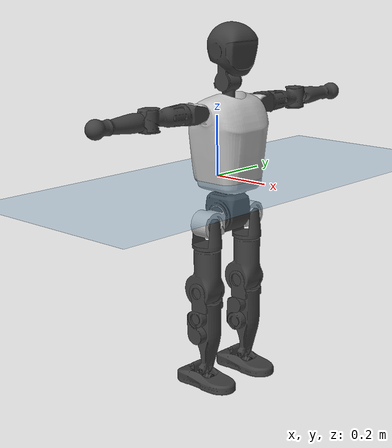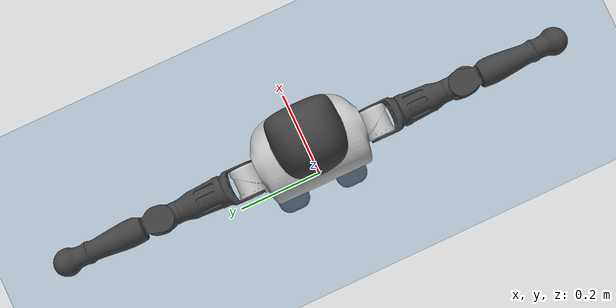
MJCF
<mujoco model="T1">
  <compiler angle="radian" assetdir="assets" balanceinertia="true" inertiafromgeom="false"/>

  <option timestep="0.005" density="1.2" viscosity="2e-05"/>

  <size nkey="1"/>

  <visual>
    <quality shadowsize="8192"/>
    <map shadowclip="0.5"/>
  </visual>

  <default>
    <default class="/">
      <joint armature="0.01" damping="0.01" frictionloss="0.1"/>
      <geom contype="0" conaffinity="0" group="1" solref="-1000 -80"/>
      <site size="0.01 0.005 0.005" group="5"/>
      <general forcelimited="true" biastype="affine" gainprm="25" biasprm="0 -25 -0.6"/>
      <default class="t1">
        <geom rgba="0.25 0.25 0.25 1"/>
        <default class="visual">
          <geom type="mesh" group="2"/>
        </default>
        <default class="collision">
          <geom group="3"/>
        </default>
        <default class="foot">
          <geom size="0.1115 0.05 0.015" type="box" condim="6" group="4" priority="1" solimp="0.015 1 0.015"/>
        </default>
        <default class="reward_collision_sphere">
          <geom group="5" rgba="1 0 0 1"/>
        </default>
      </default>
    </default>
  </default>

  <asset>
    <texture type="skybox" colorspace="auto" name="//unnamed_texture_0" builtin="gradient" rgb1="0.95 0.95 0.95" rgb2="0.95 0.95 0.95" width="100" height="600"/>
    <texture type="2d" colorspace="auto" name="texplane" builtin="checker" rgb1="0.345 0.575 0.748" rgb2="0.345 0.575 0.748" markrgb="1 1 1" width="512" height="512"/>
    <material name="MatPlane" class="/" texture="texplane" texuniform="true" texrepeat="2 2" specular="0.9"/>
    <mesh name="Trunk" class="/" file="Trunk.stl"/>
    <mesh name="H1" class="/" file="H1.stl"/>
    <mesh name="H2" class="/" file="H2.stl"/>
    <mesh name="AL1" class="/" file="AL1.stl"/>
    <mesh name="AL2" class="/" file="AL2.stl"/>
    <mesh name="AL3" class="/" file="AL3.stl"/>
    <mesh name="left_hand_link" class="/" file="left_hand_link.stl"/>
    <mesh name="AR1" class="/" file="AR1.stl"/>
    <mesh name="AR2" class="/" file="AR2.stl"/>
    <mesh name="AR3" class="/" file="AR3.stl"/>
    <mesh name="right_hand_link" class="/" file="right_hand_link.stl"/>
    <mesh name="Waist" class="/" file="Waist.stl"/>
    <mesh name="Hip_Pitch_Left" class="/" file="Hip_Pitch_Left.stl"/>
    <mesh name="Hip_Roll_Left" class="/" file="Hip_Roll_Left.stl"/>
    <mesh name="Hip_Yaw_Left" class="/" file="Hip_Yaw_Left.stl"/>
    <mesh name="Shank_Left" class="/" file="Shank_Left.stl"/>
    <mesh name="Ankle_Cross_Left" class="/" file="Ankle_Cross_Left.stl"/>
    <mesh name="left_foot_link" class="/" file="left_foot_link.stl"/>
    <mesh name="Hip_Pitch_Right" class="/" file="Hip_Pitch_Right.stl"/>
    <mesh name="Hip_Roll_Right" class="/" file="Hip_Roll_Right.stl"/>
    <mesh name="Hip_Yaw_Right" class="/" file="Hip_Yaw_Right.stl"/>
    <mesh name="Shank_Right" class="/" file="Shank_Right.stl"/>
    <mesh name="Ankle_Cross_Right" class="/" file="Ankle_Cross_Right.stl"/>
    <mesh name="right_foot_link" class="/" file="right_foot_link.stl"/>
  </asset>

  <worldbody>
    <geom name="floor" class="/" size="100 100 0.125" type="plane" group="0" material="MatPlane"/>
    <light name="toplight_shadow" class="/" pos="0 0 5" dir="0.0990148 0.0990148 -0.990148" type="directional" ambient="0.04 0.04 0.04" diffuse="0.55 0.55 0.55" specular="0.12 0.12 0.12"/>
    <light name="toplight_fill" class="/" pos="0 0 5" dir="0.0990148 0.0990148 -0.990148" type="directional" castshadow="false" ambient="0.04 0.04 0.04" diffuse="0.3 0.3 0.3" specular="0.08 0.08 0.08"/>
    <body name="trunk" childclass="t1" pos="0.000957048 -0.00160456 0.000850593" quat="1 0.000298321 0.000474138 -0.000682906">
      <inertial pos="0.041359 -0.00142975 0.107663" quat="0.999959 -6.19371e-06 -0.00901637 0.000330235" mass="8.70317" diaginertia="0.0222584 0.055452 0.068977"/>
      <joint name="//unnamed_joint_0" type="free" armature="0" damping="0" frictionloss="0"/>
      <geom name="//unnamed_geom_1" class="visual" rgba="0.76 0.76 0.76 1" mesh="Trunk"/>
      <geom name="//unnamed_geom_2" class="collision" size="0.0679359 0.0905813 0.135872" pos="0.0450631 0 0.123937" type="box"/>
      <geom name="//unnamed_geom_3" class="reward_collision_sphere" size="0.104168" pos="0.0450631 0 0.103281"/>
      <geom name="//unnamed_geom_4" class="reward_collision_sphere" size="0.0135872" pos="0.0450631 0.0793543 0"/>
      <geom name="//unnamed_geom_5" class="reward_collision_sphere" size="0.0135872" pos="0.0450631 -0.0793543 0"/>
      <geom name="//unnamed_geom_6" class="reward_collision_sphere" size="0.0135872" pos="0.0450631 0.0998931 0.185905"/>
      <geom name="//unnamed_geom_7" class="reward_collision_sphere" size="0.0135872" pos="0.0450631 -0.0998931 0.185905"/>
      <site name="imu" pos="0.00426053 0.00465026 -0.00430455" size="0.00905813"/>
      <camera name="track" pos="0 -1.86716 0" quat="0.707107 0.707107 0 0" mode="trackcom"/>
      <camera name="ego_camera" pos="0.0916282 0 0.433779" quat="-0.5 -0.5 0.5 0.5"/>
      <body name="H1" pos="0.0478381 0.00140557 0.250035" quat="1 -3.82747e-06 -5.54073e-08 -1.47816e-05">
        <inertial pos="-0.00250399 -0.0024067 0.0601817" quat="0.76037 -0.0123019 -0.00900398 0.649311" mass="0.332173" diaginertia="5.81363e-05 0.000159922 0.000177059"/>
        <joint name="AAHead_yaw" pos="0 0 0" axis="0.00181909 -0.0016561 0.999997" range="-1.55401 1.54744" armature="0.00849482" damping="0.0143772" frictionloss="0.101475"/>
        <geom name="//unnamed_geom_8" class="visual" mesh="H1"/>
        <body name="H2" pos="-0.00117146 -0.0001906 0.0640542" quat="1 -3.41977e-05 5.80316e-05 -7.12914e-06">
          <inertial pos="0.0048601 0.000536513 0.101705" quat="0.988869 0.106206 -0.0702911 -0.0769251" mass="0.457113" diaginertia="0.00048053 0.00132273 0.00203691"/>
          <joint name="Head_pitch" pos="0 0 0" axis="-0.000807903 -1 0.000303394" range="-1.23336 0.360827" armature="0.0080675" damping="0.0048398" frictionloss="0.0945397"/>
          <geom name="//unnamed_geom_9" class="visual" mesh="H2"/>
          <geom name="//unnamed_geom_10" class="collision" size="0.072465" pos="0.00751051 0 0.113609"/>
          <geom name="//unnamed_geom_11" class="reward_collision_sphere" size="0.0815231" pos="0.015021 0 0.103281"/>
        </body>
      </body>
      <body name="AL1" pos="0.0436039 0.0991603 0.227135" quat="1 -0.000100506 0.000317819 4.24499e-05">
        <inertial pos="-0.000427483 0.0416302 -0.000221626" quat="0.514008 0.490519 -0.501981 0.493156" mass="0.395253" diaginertia="0.000325582 0.000910958 0.000350368"/>
        <joint name="Left_Shoulder_Pitch" pos="0 0 0" axis="-0.000408786 1 -0.000228106" range="-3.30926 1.20287" armature="0.00901801" damping="0.00657808" frictionloss="0.0907121"/>
        <geom name="//unnamed_geom_12" class="visual" rgba="0.76 0.76 0.76 1" mesh="AL1"/>
        <body name="AL2" pos="0.000384115 0.044313 0.000703782" quat="1 -1.34005e-05 0.000252327 3.29347e-05">
          <inertial pos="0.00327945 0.0354091 -0.000478493" quat="0.487201 0.512974 -0.487374 0.51182" mass="0.120555" diaginertia="9.73246e-05 0.000246112 0.000209823"/>
          <joint name="Left_Shoulder_Roll" pos="0 0 0" axis="-0.999999 0.000991343 -0.000327498" stiffness="0.003703" range="-1.55579 1.74015" armature="0.00905066" damping="0.00339567" frictionloss="0.0887956"/>
          <geom name="//unnamed_geom_13" class="visual" mesh="AL2"/>
          <body name="AL3" pos="0.00220651 0.056942 0.000271914" quat="1 0.000323199 0.000444186 0.000222844">
            <inertial pos="-0.00251519 0.0801871 -0.0005108" quat="0.706251 0.707961 -0.000345998 -0.000353762" mass="0.765884" diaginertia="0.00305941 0.00886568 0.000735767"/>
            <joint name="Left_Elbow_Pitch" pos="0 0 0" axis="-0.00059677 -0.999998 -0.00210037" stiffness="0.000339302" range="-2.26597 2.2726" armature="0.00900178" damping="0.00766809" frictionloss="0.0918152"/>
            <geom name="//unnamed_geom_14" class="visual" mesh="AL3"/>
            <geom name="//unnamed_geom_15" class="collision" size="0.0271744 0.0679359" pos="0 0.046679 0" quat="0.707105 0.707108 0 0" type="cylinder"/>
            <geom name="//unnamed_geom_16" class="reward_collision_sphere" size="0.0326093"/>
            <body name="left_hand_link" pos="0.000890835 0.137924 -0.00135422" quat="1 0.000341438 -0.000419 -0.000727773">
              <inertial pos="3.75171e-05 0.102044 0.000866545" quat="0.708163 0.706047 0.00125301 0.00070404" mass="0.240065" diaginertia="0.0019337 0.00559534 0.000241169"/>
              <joint name="Left_Elbow_Yaw" pos="0 0 0" axis="0.00105294 -0.00387503 0.999992" stiffness="0.00185758" range="-2.44469 0.0216421" armature="0.00885305" damping="0.0134117" frictionloss="0.0920716"/>
              <geom name="//unnamed_geom_17" class="visual" mesh="left_hand_link"/>
              <geom name="//unnamed_geom_18" class="collision" size="0.0271744 0.0792586" pos="0 0.121365 0" quat="0.707105 0.707108 0 0" type="cylinder"/>
              <geom name="//unnamed_geom_19" class="reward_collision_sphere" size="0.0452906"/>
              <geom name="//unnamed_geom_20" class="reward_collision_sphere" size="0.0317034" pos="0 0.102694 0"/>
              <geom name="//unnamed_geom_21" class="reward_collision_sphere" size="0.0317034" pos="0 0.20072 0"/>
            </body>
          </body>
        </body>
      </body>
      <body name="AR1" pos="0.042403 -0.100326 0.226862" quat="1 -0.000290248 0.000279256 -0.000143483">
        <inertial pos="-0.000689281 -0.0438024 0.00209143" quat="0.504042 0.495975 -0.504086 0.495831" mass="0.395085" diaginertia="0.000328658 0.000895925 0.00034465"/>
        <joint name="Right_Shoulder_Pitch" pos="0 0 0" axis="0.00375866 -0.999961 0.00798278" range="-1.20378 3.29775" armature="0.00859009" damping="0.00728427" frictionloss="0.0954599"/>
        <geom name="//unnamed_geom_22" class="visual" rgba="0.76 0.76 0.76 1" mesh="AR1"/>
        <body name="AR2" pos="-0.000498243 -0.0425544 0.000618844" quat="1 0.00013059 0.000152338 -9.42719e-05">
          <inertial pos="0.00286181 -0.0356954 0.000644142" quat="0.509956 0.488284 -0.513191 0.488015" mass="0.122025" diaginertia="9.85252e-05 0.000251236 0.000207392"/>
          <joint name="Right_Shoulder_Roll" pos="0 0 0" axis="-0.99998 -0.00229957 -0.00592936" range="-1.74587 1.56667" armature="0.00818195" damping="0.00695421" frictionloss="0.0899193"/>
          <geom name="//unnamed_geom_23" class="visual" mesh="AR2"/>
          <body name="AR3" pos="-0.000688401 -0.0581618 0.0014249" quat="1 -3.07711e-05 -0.000595733 0.00012468">
            <inertial pos="0.00199744 -0.079171 0.00178529" quat="0.707249 0.706964 -0.000542886 -0.000733807" mass="0.753026" diaginertia="0.00297569 0.0089954 0.000733769"/>
            <joint name="Right_Elbow_Pitch" pos="0 0 0" axis="-0.000279422 1 0.000392125" range="-2.26244 2.27615" armature="0.009189" damping="0.00632431" frictionloss="0.101476"/>
            <geom name="//unnamed_geom_24" class="visual" mesh="AR3"/>
            <geom name="//unnamed_geom_25" class="collision" size="0.0271744 0.0679359" pos="0 -0.046679 0" quat="0.707105 0.707108 0 0" type="cylinder"/>
            <geom name="//unnamed_geom_26" class="reward_collision_sphere" size="0.0326093"/>
            <body name="right_hand_link" pos="-0.000792446 -0.137348 -0.00133679" quat="1 1.98848e-06 -1.11705e-05 -4.2803e-06">
              <inertial pos="-0.000396439 -0.10315 0.00100949" quat="0.706222 0.707991 0.000277192 0.000444596" mass="0.246325" diaginertia="0.0020044 0.00591802 0.000262097"/>
              <joint name="Right_Elbow_Yaw" pos="0 0 0" axis="0.00565267 -0.00672435 0.999961" range="0.0188473 2.43836" armature="0.00942004" damping="0.00907531" frictionloss="0.0894931"/>
              <geom name="//unnamed_geom_27" class="visual" mesh="right_hand_link"/>
              <geom name="//unnamed_geom_28" class="collision" size="0.0271744 0.0792586" pos="0 -0.121365 0" quat="0.707105 0.707108 0 0" type="cylinder"/>
              <geom name="//unnamed_geom_29" class="reward_collision_sphere" size="0.0452906"/>
              <geom name="//unnamed_geom_30" class="reward_collision_sphere" size="0.0317034" pos="0 -0.102694 0"/>
              <geom name="//unnamed_geom_31" class="reward_collision_sphere" size="0.0317034" pos="0 -0.20072 0"/>
            </body>
          </body>
        </body>
      </body>
      <body name="Waist" pos="0.0455793 -0.000152887 -0.120173" quat="0.999999 -0.00135478 -2.47197e-05 -0.000232179">
        <inertial pos="-0.000584537 0.000188102 0.0072763" quat="0.984039 0.00942882 -0.177677 -0.00294347" mass="1.89591" diaginertia="0.00129268 0.00385019 0.00569239"/>
        <joint name="Waist" pos="0 0 0" axis="-0.000390504 -0.000604053 1" range="-1.57061 1.55547" armature="0.00908868" damping="0.0111696" frictionloss="0.0893864"/>
        <geom name="//unnamed_geom_32" class="visual" mesh="Waist"/>
        <body name="Hip_Pitch_Left" pos="0.00158937 0.0974552 0.00133389" quat="1 8.24177e-05 -0.000177409 6.65054e-05">
          <inertial pos="0.00273778 -0.00656561 -0.0186116" quat="0.975971 0.217101 0.0178332 -0.00551183" mass="0.762888" diaginertia="0.000420924 0.00104751 0.0014883"/>
          <joint name="Left_Hip_Pitch" pos="0 0 0" axis="-0.000531331 1 -0.000343492" stiffness="0.00602913" range="-1.81682 1.58194" armature="0.00894671" damping="0.0103927" frictionloss="0.0923458"/>
          <geom name="//unnamed_geom_33" class="visual" rgba="0.76 0.76 0.76 1" mesh="Hip_Pitch_Left"/>
          <body name="Hip_Roll_Left" pos="-0.00110773 0.000266239 -0.0241378" quat="1 2.16129e-06 -3.19848e-06 -3.58373e-07">
            <inertial pos="0.00118812 -0.00226887 -0.0548226" quat="0.706696 -0.00589741 -0.00611965 0.707466" mass="0.28403" diaginertia="0.000403855 0.0010372 0.000617566"/>
            <joint name="Left_Hip_Roll" pos="0 0 0" axis="-0.999989 0.000811236 -0.00463889" range="-1.56056 0.19402" armature="0.00878766" damping="0" frictionloss="0.0951659"/>
            <geom name="//unnamed_geom_34" class="visual" mesh="Hip_Roll_Left"/>
            <geom name="//unnamed_geom_35" class="reward_collision_sphere" size="0.0498197"/>
            <body name="Hip_Yaw_Left" pos="-0.000509403 -0.000265369 -0.0848292" quat="1 -2.6322e-05 -4.83585e-06 -1.49636e-05">
              <inertial pos="-0.00514486 -0.00114825 -0.093071" quat="0.69676 -0.0293957 -0.0292659 0.716104" mass="1.61203" diaginertia="0.00611002 0.0174544 0.00297067"/>
              <joint name="Left_Hip_Yaw" pos="0 0 0" axis="-0.000625617 0.00064218 -1" range="-1.05131 1.00252" armature="0.00916004" damping="0.0060637" frictionloss="0.0900349"/>
              <geom name="//unnamed_geom_36" class="visual" mesh="Hip_Yaw_Left"/>
              <geom name="//unnamed_geom_37" class="collision" size="0.0452906 0.072465" type="cylinder"/>
              <body name="Shank_Left" pos="-0.0115703 0.000148376 -0.141577" quat="1 1.37525e-06 3.25429e-08 2.56044e-06">
                <inertial pos="-0.00544855 -1.81265e-05 -0.128164" quat="0.997546 0.000933539 -0.0243369 0.0656488" mass="1.28111" diaginertia="0.00827833 0.0236321 0.00213704"/>
                <joint name="Left_Knee_Pitch" pos="0 0 0" axis="0.00549319 0.999982 0.00240511" range="-0.00247901 2.336" armature="0.00934053" damping="0.00394581" frictionloss="0.0887333"/>
                <geom name="//unnamed_geom_38" class="visual" mesh="Shank_Left"/>
                <geom name="//unnamed_geom_39" class="collision" size="0.0452906 0.0679359" pos="0 0 -0.123937" type="cylinder"/>
                <geom name="//unnamed_geom_40" class="reward_collision_sphere" size="0.0588778"/>
                <body name="Ankle_Cross_Left" pos="0.00134545 -0.000354072 -0.288222" quat="1 9.97957e-06 -0.000145104 0.000183173">
                  <inertial pos="-0.00509867 -0.000413557 -0.00863223" quat="0.443703 0.551093 0.550981 0.442542" mass="0.0542934" diaginertia="6.92268e-06 1.81279e-05 1.3132e-05"/>
                  <joint name="Left_Ankle_Pitch" pos="0 0 0" axis="0.00104956 0.999999 0.000310492" range="-0.872775 0.35189" armature="0.0100937" damping="0.017204" frictionloss="0.0923474"/>
                  <geom name="//unnamed_geom_41" class="visual" mesh="Ankle_Cross_Left"/>
                  <body name="left_foot_link" pos="0.000159691 -0.00109087 -0.0114354" quat="0.999999 -0.000193246 2.14966e-05 0.00116257">
                    <inertial pos="-0.00112945 0.000410787 -0.00940685" quat="0.00602639 0.614911 -0.000302194 0.788573" mass="0.524029" diaginertia="0.000667276 0.00170187 0.00261059"/>
                    <joint name="Left_Ankle_Roll" pos="0 0 0" axis="-0.999907 0.00280741 0.0133681" range="-0.458108 0.446586" armature="0.00913933" damping="0.00130462" frictionloss="0.0937797"/>
                    <geom name="//unnamed_geom_42" class="visual" mesh="left_foot_link"/>
                    <geom name="left_foot" class="foot" size="0.108329 0.0427764 0.0139966" pos="0.00751051 0 -0.0154921"/>
                    <geom name="//unnamed_geom_44" class="reward_collision_sphere" size="0.0471023" pos="0.00751051 0 -0.0154921"/>
                    <geom name="//unnamed_geom_45" class="reward_collision_sphere" size="0.0271744" pos="0.0713499 -0.0214723 -0.0154921"/>
                    <geom name="//unnamed_geom_46" class="reward_collision_sphere" size="0.0271744" pos="-0.0525736 -0.0214723 -0.0154921"/>
                    <site name="left_foot" class="foot" pos="0.00751051 0 -0.0154921" size="0.00905813"/>
                  </body>
                </body>
              </body>
            </body>
          </body>
        </body>
        <body name="Hip_Pitch_Right" pos="0.00151837 -0.0986419 -0.000906256" quat="1 6.53482e-05 6.65044e-05 5.56111e-06">
          <inertial pos="-0.00180289 0.00529428 -0.0175717" quat="0.974179 -0.225409 0.0128189 -0.00130487" mass="0.756106" diaginertia="0.000437203 0.00105243 0.00145079"/>
          <joint name="Right_Hip_Pitch" pos="0 0 0" axis="0.000743439 -0.999997 0.00212172" range="-1.55703 1.79312" armature="0.00950542" damping="0" frictionloss="0.0863682"/>
          <geom name="//unnamed_geom_47" class="visual" rgba="0.76 0.76 0.76 1" mesh="Hip_Pitch_Right"/>
          <body name="Hip_Roll_Right" pos="-0.00144249 0.000630472 -0.0217654" quat="1 4.37636e-05 0.000202281 -3.30592e-05">
            <inertial pos="0.000637083 -0.00119544 -0.0547089" quat="0.708153 -0.00124807 -1.23313e-05 0.706058" mass="0.282522" diaginertia="0.00042719 0.00108763 0.000602303"/>
            <joint name="Right_Hip_Roll" pos="0 0 0" axis="-0.99999 0.00360363 -0.00272745" range="-0.200442 1.57458" armature="0.00886172" damping="0.00341022" frictionloss="0.092928"/>
            <geom name="//unnamed_geom_48" class="visual" mesh="Hip_Roll_Right"/>
            <geom name="//unnamed_geom_49" class="reward_collision_sphere" size="0.0498197"/>
            <body name="Hip_Yaw_Right" pos="-0.00146386 0.000263434 -0.0862749" quat="1 0.00041933 -3.46869e-06 -0.000170662">
              <inertial pos="-0.00538602 0.000146536 -0.0922198" quat="0.714417 -0.0315994 -0.0336472 0.698196" mass="1.59444" diaginertia="0.00629135 0.018041 0.00311832"/>
              <joint name="Right_Hip_Yaw" pos="0 0 0" axis="0.000985044 0.000467097 -0.999999" stiffness="0.00317073" range="-0.996903 1.013" armature="0.00906291" damping="0.0206541" frictionloss="0.0952147"/>
              <geom name="//unnamed_geom_50" class="visual" mesh="Hip_Yaw_Right"/>
              <geom name="//unnamed_geom_51" class="collision" size="0.0452906 0.072465" type="cylinder"/>
              <body name="Shank_Right" pos="-0.0116931 0.0003464 -0.140335" quat="1 -0.000321944 8.62368e-05 -0.000205145">
                <inertial pos="-0.00479648 -0.00159513 -0.12676" quat="0.999291 -0.00170697 -0.0195939 -0.0320911" mass="1.35281" diaginertia="0.00848304 0.0247202 0.00225079"/>
                <joint name="Right_Knee_Pitch" pos="0 0 0" axis="-0.00704389 -0.999974 0.00148407" range="-2.37846 -0.00427072" armature="0.0094134" damping="0.00634736" frictionloss="0.0899172"/>
                <geom name="//unnamed_geom_52" class="visual" mesh="Shank_Right"/>
                <geom name="//unnamed_geom_53" class="collision" size="0.0452906 0.0679359" pos="0 0 -0.123937" type="cylinder"/>
                <geom name="//unnamed_geom_54" class="reward_collision_sphere" size="0.0588778"/>
                <body name="Ankle_Cross_Right" pos="0.000557788 -0.00147519 -0.290251" quat="1 2.3876e-05 -1.09083e-05 6.48439e-06">
                  <inertial pos="-0.00320472 -3.49591e-05 -0.00835229" quat="0.443362 0.551098 0.550604 0.443346" mass="0.054404" diaginertia="7.11656e-06 1.82074e-05 1.36846e-05"/>
                  <joint name="Right_Ankle_Pitch" pos="0 0 0" axis="0.00741984 -0.999972 0.000417057" range="-0.347605 0.850234" armature="0.00907158" damping="0.00621686" frictionloss="0.0903815"/>
                  <geom name="//unnamed_geom_55" class="visual" mesh="Ankle_Cross_Right"/>
                  <body name="right_foot_link" pos="-3.35541e-05 0.000396872 -0.0103647" quat="1 0.000139702 -3.56265e-05 -2.72487e-05">
                    <inertial pos="1.9158e-06 0.00137459 -0.0117559" quat="0.000573305 0.61661 -0.00574421 0.787248" mass="0.498209" diaginertia="0.000628304 0.00163971 0.00242302"/>
                    <joint name="Right_Ankle_Roll" pos="0 0 0" axis="-0.999985 0.00550287 -0.000160526" range="-0.4639 0.481086" armature="0.00790921" damping="0" frictionloss="0.0935754"/>
                    <geom name="//unnamed_geom_56" class="visual" mesh="right_foot_link"/>
                    <geom name="right_foot" class="foot" size="0.0970479 0.0433493 0.0143009" pos="0.00751051 0 -0.0154921"/>
                    <geom name="//unnamed_geom_58" class="reward_collision_sphere" size="0.0362325"/>
                    <geom name="//unnamed_geom_59" class="reward_collision_sphere" size="0.0271744" pos="0.00751051 0 -0.0154921"/>
                    <geom name="//unnamed_geom_60" class="reward_collision_sphere" size="0.0271744" pos="0.0713499 0.0214723 -0.0154921"/>
                    <geom name="//unnamed_geom_61" class="reward_collision_sphere" size="0.0271744" pos="-0.0525736 0.0214723 -0.0154921"/>
                    <site name="right_foot" class="foot" pos="0.00751051 0 -0.0154921" size="0.00905813"/>
                  </body>
                </body>
              </body>
            </body>
          </body>
        </body>
      </body>
    </body>
  </worldbody>

  <contact>
    <pair class="/" geom1="floor" geom2="left_foot" name="//unnamed_contact_0"/>
    <pair class="/" geom1="floor" geom2="right_foot" name="//unnamed_contact_1"/>
  </contact>

  <actuator>
    <general name="AAHead_yaw" class="/" joint="AAHead_yaw" forcerange="-6.37323 6.37323" gainprm="23.0769" biasprm="0 -23.0769 -0.527611"/>
    <general name="Head_pitch" class="/" joint="Head_pitch" forcerange="-6.33746 6.33746" gainprm="23.0769" biasprm="0 -23.0769 -0.527611"/>
    <general name="Left_Shoulder_Pitch" class="/" joint="Left_Shoulder_Pitch" forcerange="-14.7687 14.7687" gainprm="23.0769" biasprm="0 -23.0769 -0.527611"/>
    <general name="Left_Shoulder_Roll" class="/" joint="Left_Shoulder_Roll" forcerange="-15.153 15.153" gainprm="23.0769" biasprm="0 -23.0769 -0.527611"/>
    <general name="Left_Elbow_Pitch" class="/" joint="Left_Elbow_Pitch" forcerange="-16.5986 16.5986" gainprm="23.0769" biasprm="0 -23.0769 -0.527611"/>
    <general name="Left_Elbow_Yaw" class="/" joint="Left_Elbow_Yaw" forcerange="-16.5906 16.5906" gainprm="23.0769" biasprm="0 -23.0769 -0.527611"/>
    <general name="Right_Shoulder_Pitch" class="/" joint="Right_Shoulder_Pitch" forcerange="-16.5921 16.5921" gainprm="23.0769" biasprm="0 -23.0769 -0.527611"/>
    <general name="Right_Shoulder_Roll" class="/" joint="Right_Shoulder_Roll" forcerange="-16.7347 16.7347" gainprm="23.0769" biasprm="0 -23.0769 -0.527611"/>
    <general name="Right_Elbow_Pitch" class="/" joint="Right_Elbow_Pitch" forcerange="-16.1291 16.1291" gainprm="23.0769" biasprm="0 -23.0769 -0.527611"/>
    <general name="Right_Elbow_Yaw" class="/" joint="Right_Elbow_Yaw" forcerange="-16.8046 16.8046" gainprm="23.0769" biasprm="0 -23.0769 -0.527611"/>
    <general name="Waist" class="/" joint="Waist" forcerange="-25.9787 25.9787" gainprm="23.0769" biasprm="0 -23.0769 -0.527611"/>
    <general name="Left_Hip_Pitch" class="/" joint="Left_Hip_Pitch" forcerange="-41.1856 41.1856" gainprm="23.0769" biasprm="0 -23.0769 -0.527611"/>
    <general name="Left_Hip_Roll" class="/" joint="Left_Hip_Roll" forcerange="-26.1576 26.1576" gainprm="23.0769" biasprm="0 -23.0769 -0.527611"/>
    <general name="Left_Hip_Yaw" class="/" joint="Left_Hip_Yaw" forcerange="-27.3822 27.3822" gainprm="23.0769" biasprm="0 -23.0769 -0.527611"/>
    <general name="Left_Knee_Pitch" class="/" joint="Left_Knee_Pitch" forcerange="-54.744 54.744" gainprm="23.0769" biasprm="0 -23.0769 -0.527611"/>
    <general name="Left_Ankle_Pitch" class="/" joint="Left_Ankle_Pitch" forcerange="-18.0577 18.0577" gainprm="23.0769" biasprm="0 -23.0769 -0.527611"/>
    <general name="Left_Ankle_Roll" class="/" joint="Left_Ankle_Roll" forcerange="-13.0746 13.0746" gainprm="23.0769" biasprm="0 -23.0769 -0.527611"/>
    <general name="Right_Hip_Pitch" class="/" joint="Right_Hip_Pitch" forcerange="-43.5144 43.5144" gainprm="23.0769" biasprm="0 -23.0769 -0.527611"/>
    <general name="Right_Hip_Roll" class="/" joint="Right_Hip_Roll" forcerange="-29.5185 29.5185" gainprm="23.0769" biasprm="0 -23.0769 -0.527611"/>
    <general name="Right_Hip_Yaw" class="/" joint="Right_Hip_Yaw" forcerange="-27.464 27.464" gainprm="23.0769" biasprm="0 -23.0769 -0.527611"/>
    <general name="Right_Knee_Pitch" class="/" joint="Right_Knee_Pitch" forcerange="-53.3867 53.3867" gainprm="23.0769" biasprm="0 -23.0769 -0.527611"/>
    <general name="Right_Ankle_Pitch" class="/" joint="Right_Ankle_Pitch" forcerange="-16.5751 16.5751" gainprm="23.0769" biasprm="0 -23.0769 -0.527611"/>
    <general name="Right_Ankle_Roll" class="/" joint="Right_Ankle_Roll" forcerange="-14.2146 14.2146" gainprm="23.0769" biasprm="0 -23.0769 -0.527611"/>
  </actuator>

  <sensor>
    <gyro site="imu" name="imu_angular_velocity"/>
    <velocimeter site="imu" name="imu_linear_velocity"/>
    <framelinvel objtype="site" objname="left_foot" name="left_foot_global_linear_velocity"/>
    <framelinvel objtype="site" objname="right_foot" name="right_foot_global_linear_velocity"/>
  </sensor>

  <keyframe>
    <key name="home" qpos="0 0 0.6385 1 0 0 0 0 0 0 1.4 0 -0.4 0 -1.4 0 0.4 0 -0.4 0 0 0.8 -0.4 0 0.4 0 0 -0.8 0.4 0"/>
  </keyframe>
</mujoco>
